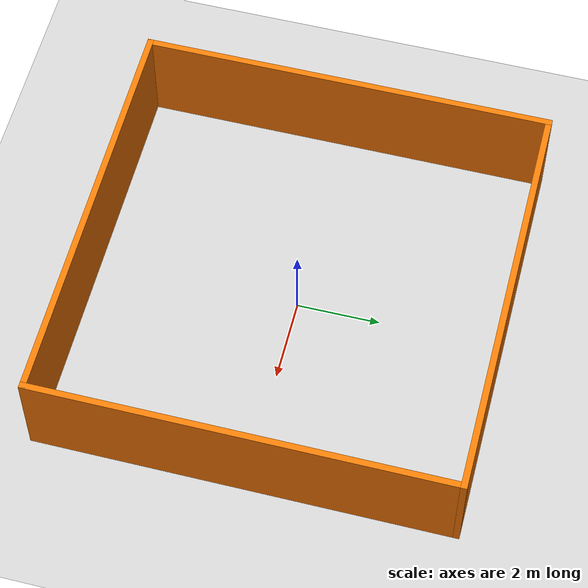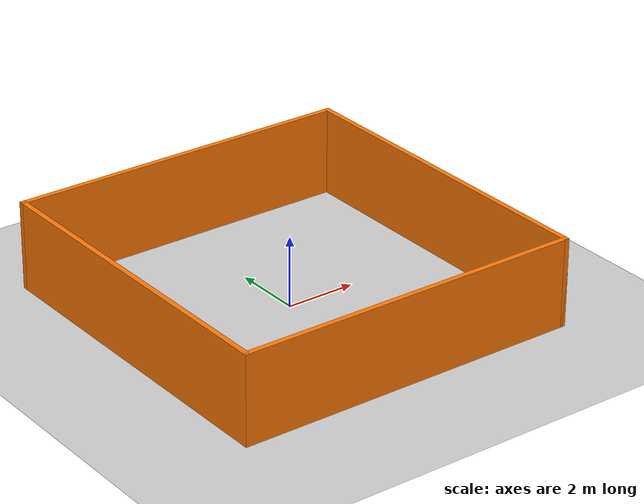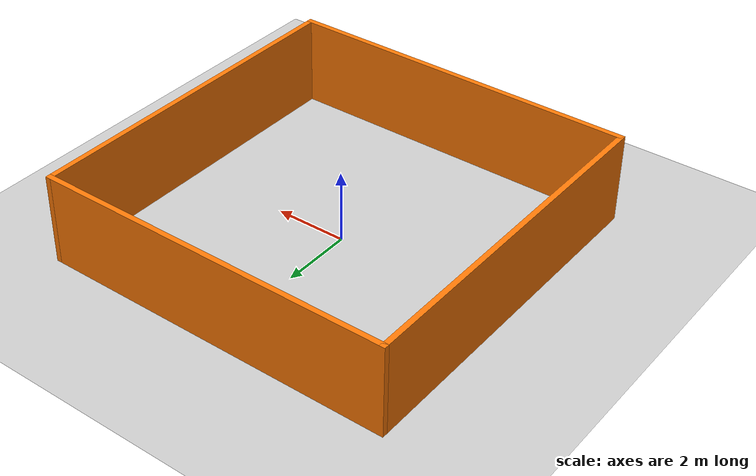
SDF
<sdf version="1.6">
 <world name="default">
  <light name="sun" type="directional">
   <pose>0 0 10 0 -0 0</pose>
   <diffuse>0.8 0.8 0.8 1</diffuse>
   <specular>0.2 0.2 0.2 1</specular>
   <attenuation>
    <range>1000</range>
    <constant>0.9</constant>
    <linear>0.01</linear>
    <quadratic>0.001</quadratic>
   </attenuation>
   <direction>-0.5 0.1 -0.9</direction>
  </light>
  <model name="ground_plane">
   <static>1</static>
   <link name="link">
    <collision name="collision">
     <geometry><plane><normal>0 0 1</normal><size>100 100</size></plane></geometry>
     <surface>
      <contact><collide_bitmask>65535</collide_bitmask></contact>
      <friction><ode><mu>100</mu><mu2>50</mu2></ode></friction>
     </surface>
    </collision>
    <visual name="visual">
     <cast_shadows>0</cast_shadows>
     <geometry><plane><normal>0 0 1</normal><size>100 100</size></plane></geometry>
     <material>
      <script><uri>file://media/materials/scripts/gazebo.material</uri><name>Gazebo/Grey</name></script>
     </material>
    </visual>
   </link>
  </model>
  <gravity>0 0 -9.8</gravity>
  <magnetic_field>6e-06 2.3e-05 -4.2e-05</magnetic_field>
  <atmosphere type="adiabatic"/>
  <physics name="default_physics" default="0" type="ode">
   <max_step_size>0.005</max_step_size>
   <real_time_factor>1</real_time_factor>
   <real_time_update_rate>0000</real_time_update_rate>
  </physics>
  <scene><ambient>0.4 0.4 0.4 1</ambient><background>0.7 0.7 0.7 1</background><shadows>1</shadows></scene>
  <audio><device>default</device></audio>
  <spherical_coordinates>
   <surface_model>EARTH_WGS84</surface_model>
   <latitude_deg>0</latitude_deg>
   <longitude_deg>0</longitude_deg>
   <elevation>0</elevation>
   <heading_deg>0</heading_deg>
  </spherical_coordinates>
  <model name="5x5">
   <pose>0.006813 -0.023373 0 0 -0 0</pose>
   <link name="Wall_0">
    <collision name="Wall_0_Collision">
     <geometry><box><size>10 0.15 2.5</size></box></geometry>
     <pose>0 0 1.25 0 -0 0</pose>
    </collision>
    <visual name="Wall_0_Visual">
     <pose>0 0 1.25 0 -0 0</pose>
     <geometry><box><size>10 0.15 2.5</size></box></geometry>
     <material>
      <script><uri>file://media/materials/scripts/gazebo.material</uri><name>Gazebo/Grey</name></script>
      <ambient>0.996078 0.47451 0.0196078 1</ambient>
     </material>
     <meta><layer>0</layer></meta>
    </visual>
    <pose>-0 -4.925 0 0 -0 0</pose>
   </link>
   <link name="Wall_2">
    <collision name="Wall_2_Collision">
     <geometry><box><size>10 0.15 2.5</size></box></geometry>
     <pose>0 0 1.25 0 -0 0</pose>
    </collision>
    <visual name="Wall_2_Visual">
     <pose>0 0 1.25 0 -0 0</pose>
     <geometry><box><size>10 0.15 2.5</size></box></geometry>
     <material>
      <script><uri>file://media/materials/scripts/gazebo.material</uri><name>Gazebo/Grey</name></script>
      <ambient>0.996078 0.47451 0.0196078 1</ambient>
     </material>
     <meta><layer>0</layer></meta>
    </visual>
    <pose>4.925 -0 0 0 -0 1.5708</pose>
   </link>
   <link name="Wall_3">
    <collision name="Wall_3_Collision">
     <geometry><box><size>10 0.15 2.5</size></box></geometry>
     <pose>0 0 1.25 0 -0 0</pose>
    </collision>
    <visual name="Wall_3_Visual">
     <pose>0 0 1.25 0 -0 0</pose>
     <geometry><box><size>10 0.15 2.5</size></box></geometry>
     <material>
      <script><uri>file://media/materials/scripts/gazebo.material</uri><name>Gazebo/Grey</name></script>
      <ambient>0.996078 0.47451 0.0196078 1</ambient>
     </material>
     <meta><layer>0</layer></meta>
    </visual>
    <pose>-0 4.925 0 0 -0 3.14159</pose>
   </link>
   <link name="Wall_4">
    <collision name="Wall_4_Collision">
     <geometry><box><size>10 0.15 2.5</size></box></geometry>
     <pose>0 0 1.25 0 -0 0</pose>
    </collision>
    <visual name="Wall_4_Visual">
     <pose>0 0 1.25 0 -0 0</pose>
     <geometry><box><size>10 0.15 2.5</size></box></geometry>
     <material>
      <script><uri>file://media/materials/scripts/gazebo.material</uri><name>Gazebo/Grey</name></script>
      <ambient>0.996078 0.47451 0.0196078 1</ambient>
     </material>
     <meta><layer>0</layer></meta>
    </visual>
    <pose>-4.925 -0 0 0 -0 -1.5708</pose>
   </link>
   <static>1</static>
  </model>
 </world>
</sdf>
